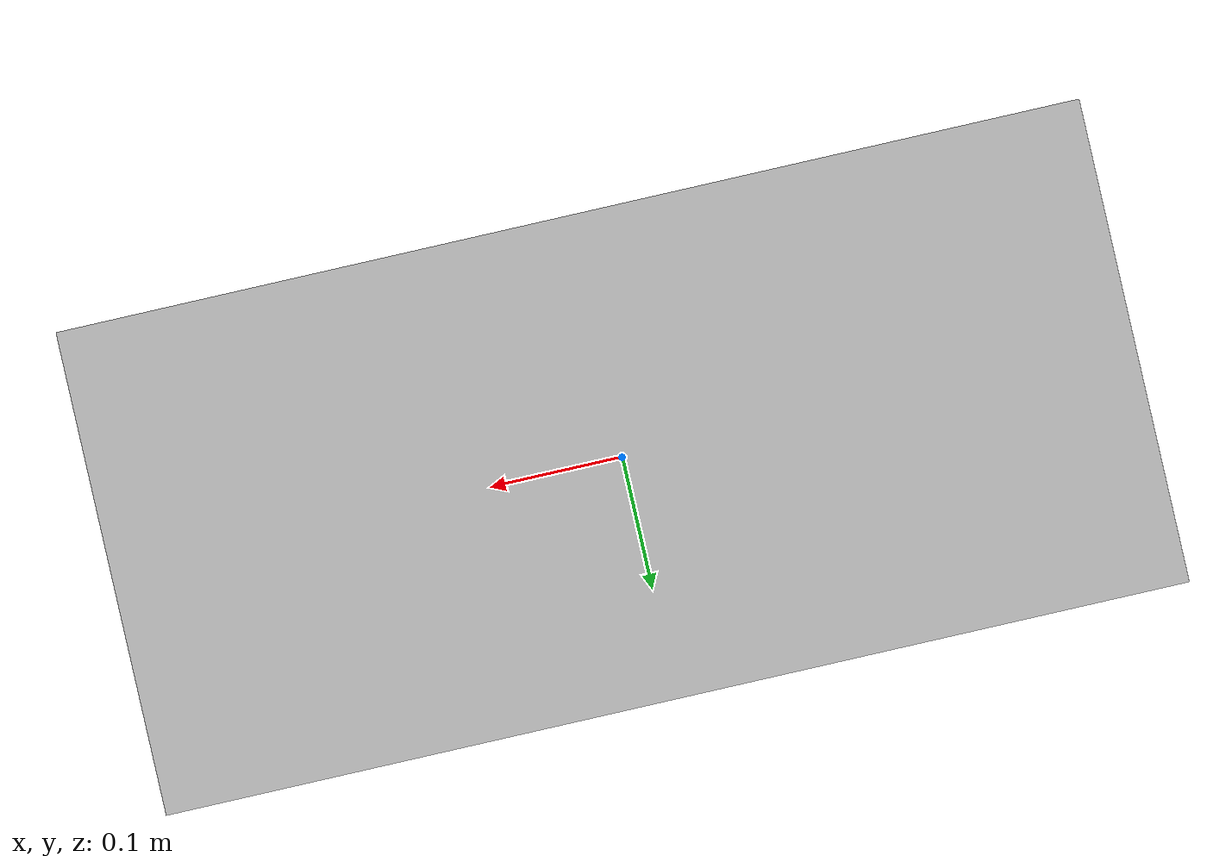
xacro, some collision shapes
<?xml version="1.0"?>
<robot name="loco" xmlns:xacro="http://www.ros.org/wiki/xacro">

  <xacro:property name="negligible" value="1e-5" />
  <xacro:property name="blade_geometry" value="0.015 0.02 .003" />

  <material name="Gray">
    <color rgba="0.7 0.7 0.7 1.0"/>
  </material>
  <material name="Black">
    <color rgba="0 0 0 1"/>
  </material>
  <material name="Green">
    <color rgba="0.0 0.8 0.0 1.0"/>
  </material>

  <link name="loco_base_frame">
  </link>

  <link name="loco_shell">
    <visual>
      <!--The origin shift visually shifts the model to CAD model origin-->
      <origin xyz=".3655 -0.1725 -0.071" rpy="${pi/2} 0 ${pi}" />
      .0175
      <geometry>
        <mesh filename="package://loco_description/meshes/LoCO_Shell.STL" scale="1 1 1" />
      </geometry>
      <material name="Gray"/>
    </visual>
    <collision>
      <geometry>
	      <!--Bounding box for collision geometry used to decrease computational requirements.-->
        <box size=".731 .345 .142"/>
      </geometry>
    </collision>
    <inertial>
      <mass value="13.2"/>
      <inertia ixx=".15" ixy="0.0" ixz="0.0" iyy=".66" iyz="0.0" izz=".53"/>
    </inertial>
  </link>

  <joint name="base_frame_to_shell" type="fixed">
    <parent link="loco_base_frame"/>
    <child link="loco_shell"/>
    <origin xyz="0 0 0"/>
  </joint>

  <link name="left_camera">
    <visual>
      <origin xyz="0 0 0" rpy="0 0 0"/>
      <geometry>
        <box size="0.0719 0.029 0.029"/>
      </geometry>
      <material name="Black"/>
    </visual>
    <collision>
      <geometry>
        <box size="0.0719 0.029 0.029"/>
      </geometry>
    </collision>
    <inertial>
      <mass value="${negligible}"/>
      <inertia ixx="${negligible}" ixy="0.00" ixz="0.00" iyy="${negligible}" iyz="0.00" izz="${negligible}"/>
    </inertial>
  </link>

  <joint name="shell_to_left_camera" type="fixed">
    <parent link="loco_shell"/>
    <child link="left_camera"/>
    <origin xyz="0.2945 0.108 0"/>
  </joint>

  <link name="right_camera">
    <visual>
      <origin xyz="0 0 0" rpy="0 0 0"/>
      <geometry>
        <box size="0.0719 0.029 0.029"/>
      </geometry>
      <material name="Black"/>
    </visual>
    <collision>
      <geometry>
        <box size="0.0719 0.029 0.029"/>
      </geometry>
    </collision>
    <inertial>
      <mass value="${negligible}"/>
      <inertia ixx="${negligible}" ixy="0.00" ixz="0.00" iyy="${negligible}" iyz="0.00" izz="${negligible}"/>
    </inertial>
  </link>

  <joint name="shell_to_right_camera" type="fixed">
    <parent link="loco_shell"/>
    <child link="right_camera"/>
    <origin xyz="0.2945 -0.108 0"/>
  </joint>

  <link name="vertical_thruster">
    <origin xyz="0 0 0" rpy="0 0 0"/>
    <inertial>
      <mass value="${negligible}"/>
      <inertia ixx="${negligible}" ixy="0.00" ixz="0.00" iyy="${negligible}" iyz="0.00" izz="${negligible}"/>
    </inertial>

    <visual>
      <origin xyz="0.03 0 0" rpy="${-pi/4} 0 0"/>
      <geometry>
        <box size="${blade_geometry}"/>
      </geometry>
      <material name="Green"/>
    </visual>
    <collision>
      <geometry>
        <box size="${blade_geometry}"/>
      </geometry>
    </collision>

    <visual>
      <origin xyz="-0.03 0 0" rpy="${pi/4} 0 0"/>
      <geometry>
        <box size="${blade_geometry}"/>
      </geometry>
      <material name="Green"/>
    </visual>
    <collision>
      <geometry>
        <box size="${blade_geometry}"/>
      </geometry>
    </collision>
  </link>

  <joint name="shell_to_vert_thrust" type="continuous">
    <parent link="loco_shell"/>
    <child link="vertical_thruster"/>
    <axis xyz="0 0 1"/>
    <origin xyz="0.2415 0 0"/>
  </joint>

  <link name="left_thruster">
    <origin xyz="0 0 0" rpy="0 0 0"/>
    <inertial>
      <mass value="${negligible}"/>
      <inertia ixx="${negligible}" ixy="0.00" ixz="0.00" iyy="${negligible}" iyz="0.00" izz="${negligible}"/>
    </inertial>

    <visual>
      <origin xyz="0.03 0 0" rpy="${pi/4} 0 0"/>
      <geometry>
        <box size="${blade_geometry}"/>
      </geometry>
      <material name="Green"/>
    </visual>
    <collision>
      <geometry>
        <box size="${blade_geometry}"/>
      </geometry>
    </collision>

    <visual>
      <origin xyz="-0.03 0 0" rpy="${-pi/4} 0 0"/>
      <geometry>
        <box size="${blade_geometry}"/>
      </geometry>
      <material name="Green"/>
    </visual>
    <collision>
      <geometry>
        <box size="${blade_geometry}"/>
      </geometry>
    </collision>
  </link>

  <joint name="shell_to_left_thrust" type="continuous">
    <parent link="loco_shell"/>
    <child link="left_thruster"/>
    <axis xyz="0 0 1"/>
    <origin xyz="-0.3195 0.109 0" rpy="0 ${pi/2} 0"/>
  </joint>

  <link name="right_thruster">
    <origin xyz="0 0 0" rpy="0 0 0"/>
    <inertial>
      <mass value="${negligible}"/>
      <inertia ixx="${negligible}" ixy="0.00" ixz="0.00" iyy="${negligible}" iyz="0.00" izz="${negligible}"/>
    </inertial>

    <visual>
      <origin xyz="0.03 0 0" rpy="${-pi/4} 0 0"/>
      <geometry>
        <box size="${blade_geometry}"/>
      </geometry>
      <material name="Green"/>
    </visual>
    <collision>
      <geometry>
        <box size="${blade_geometry}"/>
      </geometry>
    </collision>

    <visual>
      <origin xyz="-0.03 0 0" rpy="${pi/4} 0 0"/>
      <geometry>
        <box size="${blade_geometry}"/>
      </geometry>
      <material name="Green"/>
    </visual>
    <collision>
      <geometry>
        <box size="${blade_geometry}"/>
      </geometry>
    </collision>
  </link>

  <joint name="shell_to_right_thrust" type="continuous">
    <parent link="loco_shell"/>
    <child link="right_thruster"/>
    <axis xyz="0 0 1"/>
    <origin xyz="-0.3195 -0.109 0" rpy="0 ${pi/2} 0"/>
  </joint>

  <link name="ping_sonar">
    <origin xyz="0 0 0" rpy="0 0 0"/>
    <inertial>
      <mass value="${negligible}"/>
      <inertia ixx="${negligible}" ixy="0.00" ixz="0.00" iyy="${negligible}" iyz="0.00" izz="${negligible}"/>
    </inertial>

  </link>

  <joint name="shell_to_ping_sonar" type="fixed">
    <parent link="loco_shell"/>
    <child link="ping_sonar"/>
    <axis xyz="0 0 1"/>
    <origin xyz="0 0 0" rpy="${pi} 0 0"/>
  </joint>

  <!--In place of a pressure-based depth sensor, depth information is obtained from a laser scanner similar to the ping sonar, located at the exact same position as the ping sonar.-->
  <link name="depth_sensor">
    <origin xyz="0 0 0" rpy="0 0 0"/>
    <inertial>
      <mass value="${negligible}"/>
      <inertia ixx="${negligible}" ixy="0.00" ixz="0.00" iyy="${negligible}" iyz="0.00" izz="${negligible}"/>
    </inertial>

  </link>

  <joint name="shell_to_depth_sensor" type="fixed">
    <parent link="loco_shell"/>
    <child link="depth_sensor"/>
    <axis xyz="0 0 1"/>
    <origin xyz="0 0 0" rpy="${pi} 0 0"/>
  </joint>

<!--GAZEBO REFERENCES AND PLUGINS-->

  <gazebo reference="loco_shell">
    <material>Gazebo/GreyTransparent</material>
  </gazebo>

  <gazebo reference="right_camera">
   <sensor type="camera" name="right_camera">
     <update_rate>20.0</update_rate>
     <camera name="head">
       <horizontal_fov>1.3962634</horizontal_fov>
       <image>
         <width>2064</width>
         <height>1085</height>
         <format>R8G8B8</format>
       </image>
       <clip>
         <near>0.02</near>
         <far>300</far>
       </clip>
       <noise>
         <type>gaussian</type>
         <!-- Noise is sampled independently per pixel on each frame.
              That pixel's noise value is added to each of its color
              channels, which at that point lie in the range [0,1]. -->
         <mean>0.0</mean>
         <stddev>0.01</stddev>
       </noise>
     </camera>
     <plugin name="camera_controller" filename="libgazebo_ros_camera.so">
       <alwaysOn>true</alwaysOn>
       <updateRate>0.0</updateRate>
       <cameraName>right_camera</cameraName>
       <imageTopicName>image_raw</imageTopicName>
       <cameraInfoTopicName>right_camera_info</cameraInfoTopicName>
       <frameName>right_camera</frameName>
       <hackBaseline>0.07</hackBaseline>
       <distortionK1>0.0</distortionK1>
       <distortionK2>0.0</distortionK2>
       <distortionK3>0.0</distortionK3>
       <distortionT1>0.0</distortionT1>
       <distortionT2>0.0</distortionT2>
     </plugin>
   </sensor>
   <material>Gazebo/Black</material>
  </gazebo>

  <gazebo reference="left_camera">
   <sensor type="camera" name="left_camera">
     <update_rate>20.0</update_rate>
     <camera name="head">
       <horizontal_fov>1.3962634</horizontal_fov>
       <image>
         <width>2064</width>
         <height>1085</height>
         <format>R8G8B8</format>
       </image>
       <clip>
         <near>0.02</near>
         <far>300</far>
       </clip>
       <noise>
         <type>gaussian</type>
         <!-- Noise is sampled independently per pixel on each frame.
              That pixel's noise value is added to each of its color
              channels, which at that point lie in the range [0,1]. -->
         <mean>0.0</mean>
         <stddev>0.01</stddev>
       </noise>
     </camera>
     <plugin name="camera_controller" filename="libgazebo_ros_camera.so">
       <alwaysOn>true</alwaysOn>
       <updateRate>0.0</updateRate>
       <cameraName>left_camera</cameraName>
       <imageTopicName>image_raw</imageTopicName>
       <cameraInfoTopicName>left_camera_info</cameraInfoTopicName>
       <frameName>left_camera</frameName>
       <hackBaseline>0.07</hackBaseline>
       <distortionK1>0.0</distortionK1>
       <distortionK2>0.0</distortionK2>
       <distortionK3>0.0</distortionK3>
       <distortionT1>0.0</distortionT1>
       <distortionT2>0.0</distortionT2>
     </plugin>
   </sensor>
   <material>Gazebo/Black</material>
  </gazebo>

  <gazebo reference="vertical_thruster">
    <material>Gazebo/Green</material>
  </gazebo>

  <gazebo reference="right_thruster">
    <material>Gazebo/Green</material>
  </gazebo>

  <gazebo reference="left_thruster">
    <material>Gazebo/Green</material>
  </gazebo>

  <gazebo reference="ping_sonar">
    <material>Gazebo/Black</material>
  </gazebo>

  <gazebo reference="depth_sensor">
    <material>Gazebo/Black</material>
  </gazebo>

  <gazebo>
    <plugin name="buoyancy" filename="libBuoyancyPlugin.so">
      <fluid_density>1000</fluid_density>
      <link name="loco_base_frame">
          <center_of_volume>0 0 0</center_of_volume>
          <volume>0.0132</volume>
      </link>
      <link name="vertical_thruster">
          <center_of_volume>0 0 0</center_of_volume>
          <volume>1e-8</volume>
      </link>
      <link name="right_thruster">
          <center_of_volume>0 0 0</center_of_volume>
          <volume>1e-8</volume>
      </link>
      <link name="left_thruster">
          <center_of_volume>0 0 0</center_of_volume>
          <volume>1e-8</volume>
      </link>
    </plugin>
  </gazebo>

  <gazebo>
    <plugin name="gazebo_ros_control" filename="libgazebo_ros_control.so">
      <robotNamespace>/loco</robotNamespace>
    </plugin>
  </gazebo>

  <gazebo>
      <plugin filename="libgazebo_ros_force.so" name="gazebo_ros_force">
        <bodyName>left_thruster</bodyName>
        <topicName>left_thrust</topicName>
      </plugin>
  </gazebo>

  <gazebo>
      <plugin filename="libgazebo_ros_force.so" name="gazebo_ros_force">
        <bodyName>right_thruster</bodyName>
        <topicName>right_thrust</topicName>
      </plugin>
  </gazebo>

  <gazebo>
      <plugin filename="libgazebo_ros_force.so" name="gazebo_ros_force">
        <bodyName>vertical_thruster</bodyName>
        <topicName>/vertical_thrust</topicName>
      </plugin>
  </gazebo>

  <gazebo>
      <plugin filename="libgazebo_ros_force.so" name="gazebo_ros_force">
        <bodyName>loco_base_frame</bodyName>
        <topicName>/drag_force</topicName>
      </plugin>
  </gazebo>

  <gazebo reference="ping_sonar">
   <sensor type="ray" name="ping_sonar">
     <pose>0 0 0 0 0 0</pose>
     <visualize>true</visualize>
     <update_rate>1</update_rate>
     <ray>
       <scan>
         <horizontal>
           <samples>1</samples>
           <resolution>1</resolution>
           <min_angle>.000001</min_angle>
           <max_angle>0</max_angle>
         </horizontal>
         <vertical>
           <samples>2</samples>
           <resolution>1</resolution>
           <min_angle>1.570796</min_angle>
           <max_angle>1.570795</max_angle>
         </vertical>
       </scan>
       <range>
         <min>0.5</min>
         <max>30.0</max>
         <resolution>0.01</resolution>
       </range>
       <noise>
         <type>gaussian</type>
         <mean>0.0</mean>
         <stddev>0.01</stddev>
       </noise>
     </ray>
     <plugin name="gazebo_ros_head_hokuyo_controller" filename="libgazebo_ros_laser.so">
       <topicName>/sonar_data</topicName>
       <frameName>ping_sonar</frameName>
     </plugin>
   </sensor>
  </gazebo>

  <gazebo reference="depth_sensor">
   <sensor type="ray" name="depth_sensor">
     <pose>0 0 0 0 0 0</pose>
     <visualize>true</visualize>
     <update_rate>1</update_rate>
     <ray>
       <scan>
         <horizontal>
           <samples>1</samples>
           <resolution>1</resolution>
           <min_angle>.000001</min_angle>
           <max_angle>0</max_angle>
         </horizontal>
         <vertical>
           <samples>2</samples>
           <resolution>1</resolution>
           <min_angle>-1.570796</min_angle>
           <max_angle>-1.570795</max_angle>
         </vertical>
       </scan>
       <range>
         <min>0.5</min>
         <max>30.0</max>
         <resolution>0.01</resolution>
       </range>
       <noise>
         <type>gaussian</type>
         <mean>0.0</mean>
         <stddev>0.01</stddev>
       </noise>
     </ray>
     <plugin name="gazebo_ros_head_hokuyo_controller" filename="libgazebo_ros_laser.so">
       <topicName>/depth_data</topicName>
       <frameName>depth_sensor</frameName>
     </plugin>
   </sensor>
  </gazebo>

</robot>
